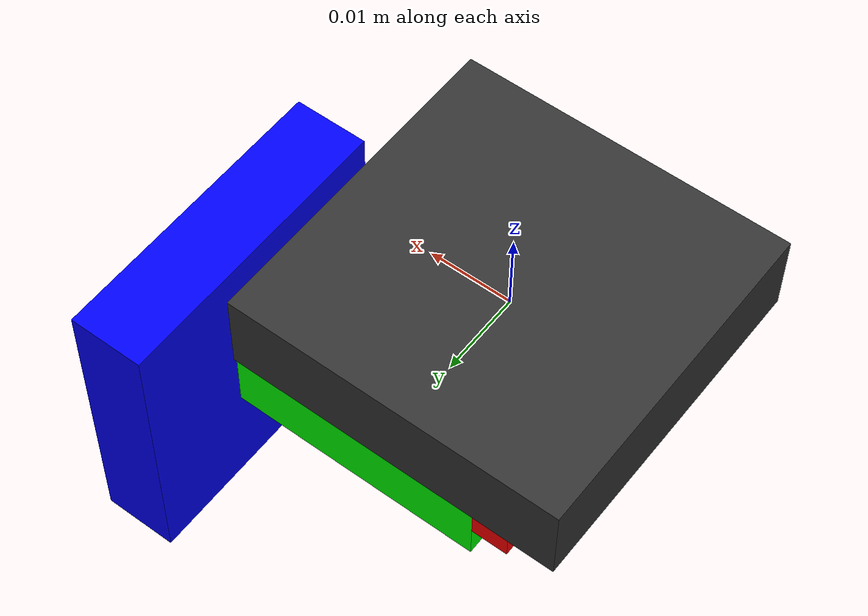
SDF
<?xml version="1.0" encoding="UTF-8"?>
<sdf version='1.9'>
  <model name='gimbal_3d'>
    <self_collide>false</self_collide>

    <link name="gimbal/base_link">
      <inertial>
        <mass>0.001</mass>
        <inertia><ixx>0.00001</ixx><iyy>0.00001</iyy><izz>0.00001</izz></inertia>
      </inertial>
      <visual name="base_vis">
        <geometry><box><size>0.04 0.04 0.01</size></box></geometry>
        <material><ambient>0.2 0.2 0.2 1</ambient><diffuse>0.2 0.2 0.2 1</diffuse></material>
      </visual>
    </link>

    <link name="yaw_link">
      <pose>0 0 -0.02 0 0 0</pose>
      <inertial>
        <mass>0.005</mass>
        <inertia><ixx>0.00001</ixx><iyy>0.00001</iyy><izz>0.00001</izz></inertia>
      </inertial>
      <visual name="yaw_vis">
        <geometry><box><size>0.01 0.01 0.04</size></box></geometry>
        <material><ambient>1 0 0 1</ambient><diffuse>1 0 0 1</diffuse></material>
      </visual>
    </link>
    <joint name="yaw_joint" type="revolute">
      <parent>gimbal/base_link</parent><child>yaw_link</child>
      <axis>
        <xyz>0 0 1</xyz>
        <dynamics><damping>0.05</damping></dynamics>
      </axis>
    </joint>

    <link name="roll_link">
      <pose>0.02 0 -0.04 0 0 0</pose>
      <inertial>
        <mass>0.005</mass>
        <inertia><ixx>0.00001</ixx><iyy>0.00001</iyy><izz>0.00001</izz></inertia>
      </inertial>
      <visual name="roll_vis">
        <geometry><box><size>0.04 0.01 0.01</size></box></geometry>
        <material><ambient>0 1 0 1</ambient><diffuse>0 1 0 1</diffuse></material>
      </visual>
    </link>
    <joint name="roll_joint" type="revolute">
      <parent>yaw_link</parent><child>roll_link</child>
      <axis>
        <xyz>1 0 0</xyz>
        <limit><lower>-0.785</lower><upper>0.785</upper></limit>
        <dynamics><damping>0.05</damping></dynamics>
      </axis>
    </joint>

    <link name="pitch_link">
      <pose>0.04 0 -0.04 0 0 0</pose>
      <inertial>
        <mass>0.005</mass>
        <inertia><ixx>0.00001</ixx><iyy>0.00001</iyy><izz>0.00001</izz></inertia>
      </inertial>
      <visual name="pitch_vis">
        <geometry><box><size>0.01 0.04 0.04</size></box></geometry>
        <material><ambient>0 0 1 1</ambient><diffuse>0 0 1 1</diffuse></material>
      </visual>
    </link>
    <joint name="pitch_joint" type="revolute">
      <parent>roll_link</parent><child>pitch_link</child>
      <axis>
        <xyz>0 1 0</xyz>
        <limit><lower>-1.57</lower><upper>3.14</upper></limit>
        <dynamics><damping>0.05</damping></dynamics>
      </axis>
    </joint>

    <!-- Option 1: position control -->
    <plugin filename="gz-sim-joint-position-controller-system" name="gz::sim::systems::JointPositionController">
      <joint_name>yaw_joint</joint_name>
      <sub_topic>gimbal_3d/yaw_cmd</sub_topic>
    </plugin>
    <plugin filename="gz-sim-joint-position-controller-system" name="gz::sim::systems::JointPositionController">
      <joint_name>roll_joint</joint_name>
      <sub_topic>gimbal_3d/roll_cmd</sub_topic>
    </plugin>
    <plugin filename="gz-sim-joint-position-controller-system" name="gz::sim::systems::JointPositionController">
      <joint_name>pitch_joint</joint_name>
      <sub_topic>gimbal_3d/pitch_cmd</sub_topic>
    </plugin>

    <!-- Option 2: velocity control (note that it might get stuck if joint limits are reached https://github.com/gazebosim/gz-sim/issues/1684) -->

    <plugin filename="gz-sim-joint-state-publisher-system" name="gz::sim::systems::JointStatePublisher">
      <joint_name>yaw_joint</joint_name>
      <joint_name>roll_joint</joint_name>
      <joint_name>pitch_joint</joint_name>
    </plugin>

  </model>
</sdf>
